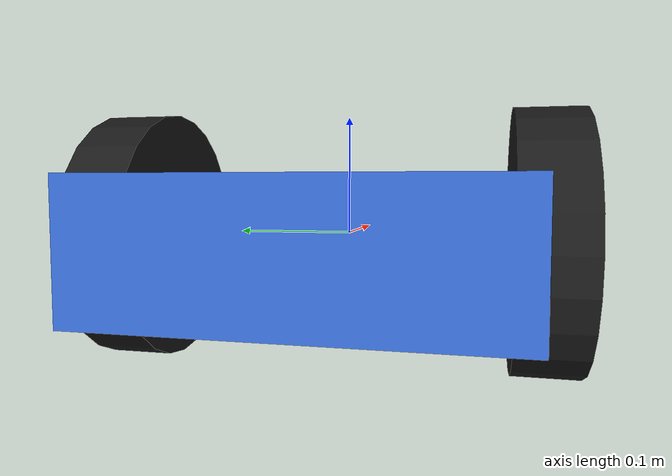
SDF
<?xml version="1.0" ?>
<sdf version="1.10">
  <model name="diffbot">
    <link name="base_link">
      <inertial>
        <mass>2.0</mass>
        <inertia>
          <ixx>0.0167</ixx><ixy>0</ixy><ixz>0</ixz>
          <iyy>0.0283</iyy><iyz>0</iyz><izz>0.0417</izz>
        </inertia>
      </inertial>

      <collision name="chassis_collision">
        <geometry><box><size>0.4 0.3 0.1</size></box></geometry>
      </collision>
      <visual name="chassis_visual">
        <geometry><box><size>0.4 0.3 0.1</size></box></geometry>
        <material>
          <ambient>0.2 0.4 0.8 1</ambient>
          <diffuse>0.2 0.4 0.8 1</diffuse>
        </material>
      </visual>

      <!-- Frictionless caster (part of base_link): a third support that slides. -->
      <collision name="caster_collision">
        <pose>0.15 0 -0.05 0 0 0</pose>
        <geometry><sphere><radius>0.05</radius></sphere></geometry>
        <surface>
          <friction><ode><mu>0</mu><mu2>0</mu2></ode></friction>
        </surface>
      </collision>
      <visual name="caster_visual">
        <pose>0.15 0 -0.05 0 0 0</pose>
        <geometry><sphere><radius>0.05</radius></sphere></geometry>
        <material>
          <ambient>0.1 0.1 0.1 1</ambient>
          <diffuse>0.1 0.1 0.1 1</diffuse>
        </material>
      </visual>

      <!-- IMU sensor; processed by the world's gz-sim-imu-system. -->
      <sensor name="imu" type="imu">
        <topic>imu</topic>
        <update_rate>50</update_rate>
        <always_on>1</always_on>
        <visualize>true</visualize>
      </sensor>
    </link>

    <!-- Wheels: cylinders whose local Z is the spin axis; the link pose rotates
         that axis to lie along the model's Y. -->
    <link name="left_wheel">
      <pose>-0.05 0.16 0 1.5708 0 0</pose>
      <inertial>
        <mass>0.2</mass>
        <inertia>
          <ixx>0.00054</ixx><ixy>0</ixy><ixz>0</ixz>
          <iyy>0.00054</iyy><iyz>0</iyz><izz>0.001</izz>
        </inertia>
      </inertial>
      <collision name="collision">
        <geometry><cylinder><radius>0.1</radius><length>0.05</length></cylinder></geometry>
        <surface>
          <friction><ode><mu>1.0</mu><mu2>1.0</mu2></ode></friction>
        </surface>
      </collision>
      <visual name="visual">
        <geometry><cylinder><radius>0.1</radius><length>0.05</length></cylinder></geometry>
        <material><ambient>0.1 0.1 0.1 1</ambient><diffuse>0.1 0.1 0.1 1</diffuse></material>
      </visual>
    </link>

    <link name="right_wheel">
      <pose>-0.05 -0.16 0 1.5708 0 0</pose>
      <inertial>
        <mass>0.2</mass>
        <inertia>
          <ixx>0.00054</ixx><ixy>0</ixy><ixz>0</ixz>
          <iyy>0.00054</iyy><iyz>0</iyz><izz>0.001</izz>
        </inertia>
      </inertial>
      <collision name="collision">
        <geometry><cylinder><radius>0.1</radius><length>0.05</length></cylinder></geometry>
        <surface>
          <friction><ode><mu>1.0</mu><mu2>1.0</mu2></ode></friction>
        </surface>
      </collision>
      <visual name="visual">
        <geometry><cylinder><radius>0.1</radius><length>0.05</length></cylinder></geometry>
        <material><ambient>0.1 0.1 0.1 1</ambient><diffuse>0.1 0.1 0.1 1</diffuse></material>
      </visual>
    </link>

    <joint name="left_wheel_joint" type="revolute">
      <parent>base_link</parent>
      <child>left_wheel</child>
      <axis>
        <xyz expressed_in="__model__">0 1 0</xyz>
        <limit><lower>-1e16</lower><upper>1e16</upper></limit>
      </axis>
    </joint>

    <joint name="right_wheel_joint" type="revolute">
      <parent>base_link</parent>
      <child>right_wheel</child>
      <axis>
        <xyz expressed_in="__model__">0 1 0</xyz>
        <limit><lower>-1e16</lower><upper>1e16</upper></limit>
      </axis>
    </joint>

    <!-- Differential-drive controller. Subscribes to gz topic 'cmd_vel'
         (gz.msgs.Twist) and publishes odometry + the odom->base_link TF. -->
    <plugin filename="gz-sim-diff-drive-system" name="gz::sim::systems::DiffDrive">
      <left_joint>left_wheel_joint</left_joint>
      <right_joint>right_wheel_joint</right_joint>
      <wheel_separation>0.32</wheel_separation>
      <wheel_radius>0.1</wheel_radius>
      <odom_publish_frequency>30</odom_publish_frequency>
      <topic>cmd_vel</topic>
      <odom_topic>odom</odom_topic>
      <tf_topic>tf</tf_topic>
      <frame_id>odom</frame_id>
      <child_frame_id>base_link</child_frame_id>
      <max_linear_acceleration>1.0</max_linear_acceleration>
      <min_linear_acceleration>-1.0</min_linear_acceleration>
    </plugin>
  </model>
</sdf>
